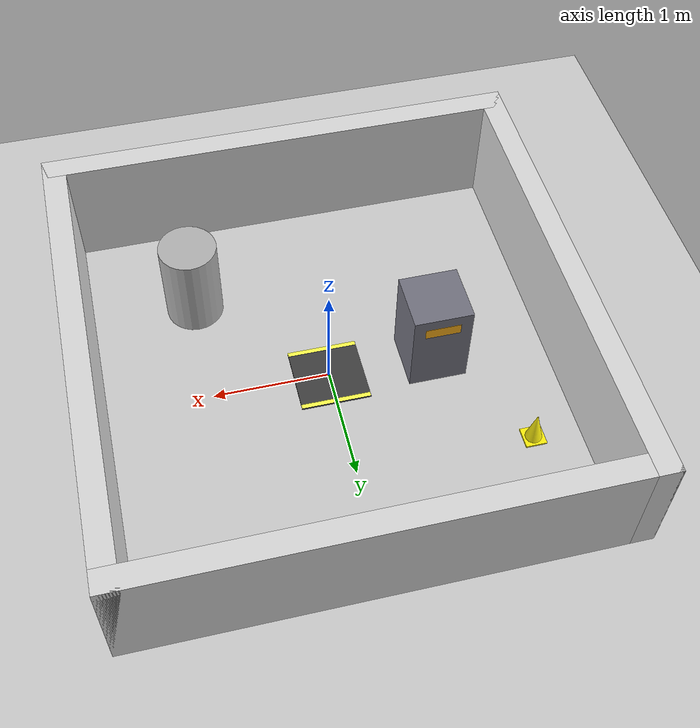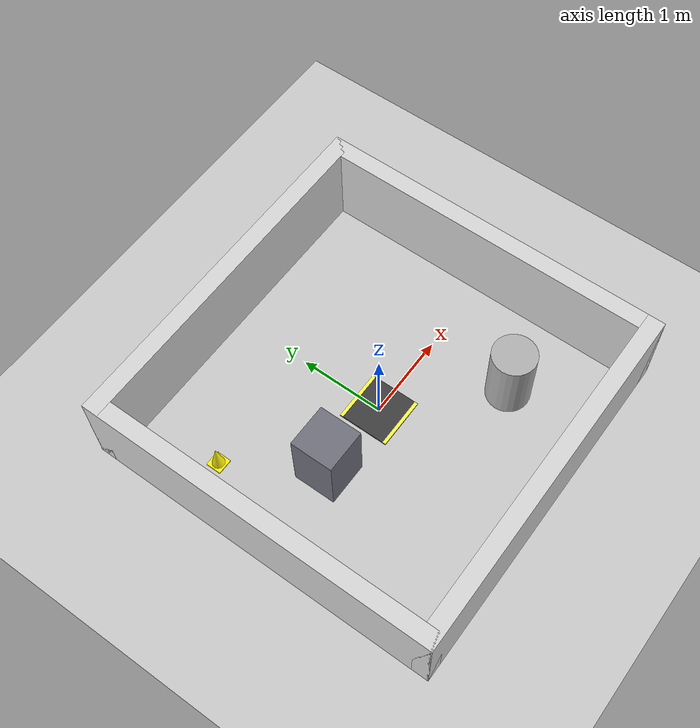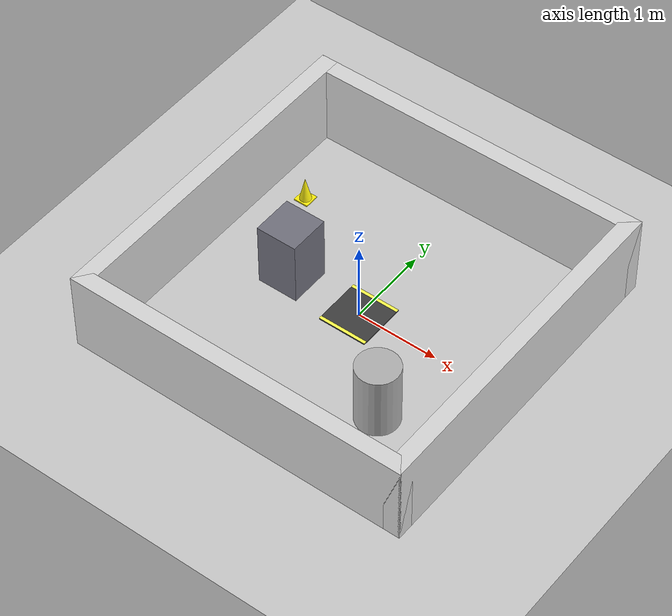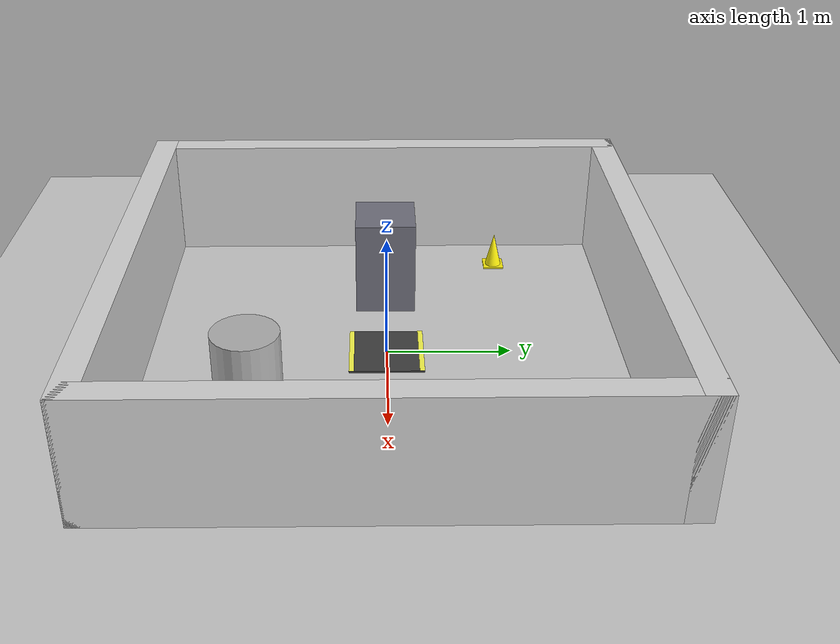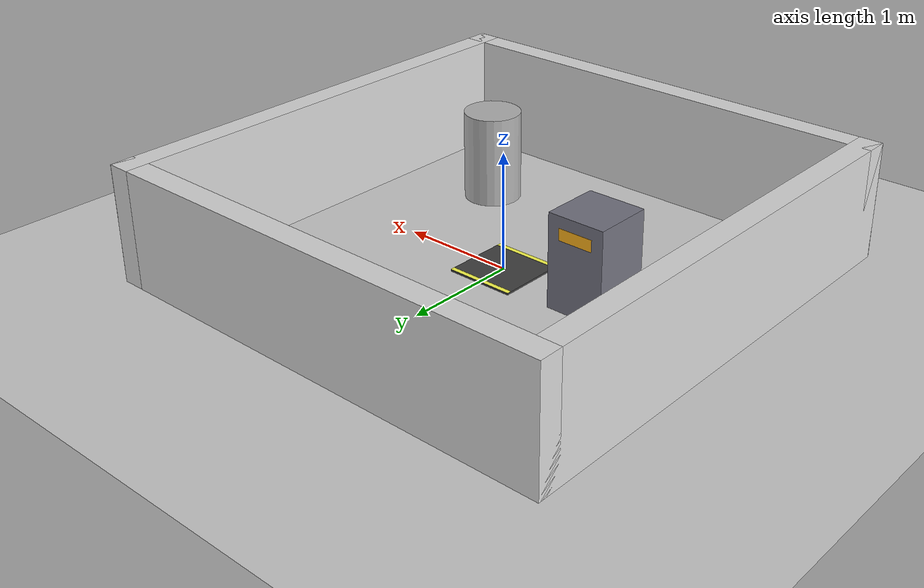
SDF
<sdf version="1.6">
 <world name="scout_arena">
  <physics type="ode">
   <real_time_update_rate>1000</real_time_update_rate>
   <max_step_size>0.001</max_step_size>
   <real_time_factor>1</real_time_factor>
  </physics>
  <scene><ambient>0.6 0.6 0.6 1</ambient><background>0.7 0.85 0.95 1</background><shadows>true</shadows></scene>
  <include><uri>model://sun</uri></include>
  <include><uri>model://ground_plane</uri></include>
  <model name="wall_north">
   <static>true</static>
   <pose>0 2.0 0.5 0 0 0</pose>
   <link name="link">
    <collision name="c"><geometry><box><size>4.2 0.2 1.0</size></box></geometry></collision>
    <visual name="v">
     <geometry><box><size>4.2 0.2 1.0</size></box></geometry>
     <material><ambient>0.75 0.75 0.75 1</ambient><diffuse>0.85 0.85 0.85 1</diffuse></material>
    </visual>
   </link>
  </model>
  <model name="wall_south">
   <static>true</static>
   <pose>0 -2.0 0.5 0 0 0</pose>
   <link name="link">
    <collision name="c"><geometry><box><size>4.2 0.2 1.0</size></box></geometry></collision>
    <visual name="v">
     <geometry><box><size>4.2 0.2 1.0</size></box></geometry>
     <material><ambient>0.75 0.75 0.75 1</ambient><diffuse>0.85 0.85 0.85 1</diffuse></material>
    </visual>
   </link>
  </model>
  <model name="wall_east">
   <static>true</static>
   <pose>2.0 0 0.5 0 0 0</pose>
   <link name="link">
    <collision name="c"><geometry><box><size>0.2 4.2 1.0</size></box></geometry></collision>
    <visual name="v">
     <geometry><box><size>0.2 4.2 1.0</size></box></geometry>
     <material><ambient>0.75 0.75 0.75 1</ambient><diffuse>0.85 0.85 0.85 1</diffuse></material>
    </visual>
   </link>
  </model>
  <model name="wall_west">
   <static>true</static>
   <pose>-2.0 0 0.5 0 0 0</pose>
   <link name="link">
    <collision name="c"><geometry><box><size>0.2 4.2 1.0</size></box></geometry></collision>
    <visual name="v">
     <geometry><box><size>0.2 4.2 1.0</size></box></geometry>
     <material><ambient>0.75 0.75 0.75 1</ambient><diffuse>0.85 0.85 0.85 1</diffuse></material>
    </visual>
   </link>
  </model>
  <include><uri>model://scout_dock</uri><name>scout_dock</name></include>
  <include>
   <uri>model://ur7_placeholder</uri>
   <name>ur7_placeholder</name>
   <pose>-0.9 0.0 0.4 0 0 0</pose>
  </include>
  <include>
   <uri>model://hazard_cone_yellow</uri>
   <name>hazard_yellow</name>
   <pose>-1.5 1.0 0.0 0 0 0</pose>
  </include>
  <model name="inner_pillar">
   <static>true</static>
   <pose>1.0 -1.0 0.4 0 0 0</pose>
   <link name="link">
    <collision name="c">
     <geometry><cylinder><radius>0.25</radius><length>0.8</length></cylinder></geometry>
    </collision>
    <visual name="v">
     <geometry><cylinder><radius>0.25</radius><length>0.8</length></cylinder></geometry>
     <material><ambient>0.6 0.6 0.6 1</ambient><diffuse>0.7 0.7 0.7 1</diffuse></material>
    </visual>
   </link>
  </model>
 </world>
</sdf>

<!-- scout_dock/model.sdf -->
<sdf version="1.6">
  <!-- Thin ground pad (2 cm tall, 0.6 x 0.6 m) placed wherever the
       arm's pickup station will live. Non-colliding so the robot can
       roll onto it. -->
  <model name="scout_dock">
    <static>true</static>
    <link name="link">
      <visual name="pad">
        <geometry>
          <box><size>0.6 0.6 0.02</size></box>
        </geometry>
        <material>
          <ambient>0.15 0.15 0.15 1</ambient>
          <diffuse>0.25 0.25 0.25 1</diffuse>
        </material>
      </visual>
      <visual name="stripe_n">
        <pose>0 0.28 0.011 0 0 0</pose>
        <geometry>
          <box><size>0.6 0.04 0.001</size></box>
        </geometry>
        <material>
          <ambient>0.95 0.95 0.2 1</ambient>
          <diffuse>1.0 1.0 0.3 1</diffuse>
        </material>
      </visual>
      <visual name="stripe_s">
        <pose>0 -0.28 0.011 0 0 0</pose>
        <geometry>
          <box><size>0.6 0.04 0.001</size></box>
        </geometry>
        <material>
          <ambient>0.95 0.95 0.2 1</ambient>
          <diffuse>1.0 1.0 0.3 1</diffuse>
        </material>
      </visual>
    </link>
  </model>
</sdf>

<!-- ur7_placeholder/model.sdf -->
<sdf version="1.6">
  <!-- Not functional. Just a 50 x 50 x 80 cm box painted industrial grey
       so the arm's eventual footprint is obvious in the scene. -->
  <model name="ur7_placeholder">
    <static>true</static>
    <link name="base">
      <collision name="base_col">
        <geometry>
          <box><size>0.5 0.5 0.8</size></box>
        </geometry>
      </collision>
      <visual name="base_vis">
        <geometry>
          <box><size>0.5 0.5 0.8</size></box>
        </geometry>
        <material>
          <ambient>0.3 0.3 0.35 1</ambient>
          <diffuse>0.45 0.45 0.5 1</diffuse>
          <specular>0.2 0.2 0.2 1</specular>
        </material>
      </visual>
      <visual name="label">
        <pose>0 0.251 0.25 0 0 0</pose>
        <geometry>
          <box><size>0.3 0.001 0.1</size></box>
        </geometry>
        <material>
          <ambient>0.95 0.6 0.05 1</ambient>
          <diffuse>1.0 0.7 0.1 1</diffuse>
          <emissive>0.2 0.1 0.0 1</emissive>
        </material>
      </visual>
    </link>
  </model>
</sdf>

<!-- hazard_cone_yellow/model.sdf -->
<sdf version="1.6">
  <!--
    FSAE / lab-style traffic cone, ~12 inches (305 mm) tall.
    See hazard_cone_red/model.sdf for shape commentary.
    Origin: bottom-center of the skirt (sits flush on z=0).
  -->
  <model name="hazard_cone_yellow">
    <static>true</static>
    <link name="link">
      <collision name="skirt_col">
        <pose>0 0 0.0075 0 0 0</pose>
        <geometry><box><size>0.18 0.18 0.015</size></box></geometry>
      </collision>
      <visual name="skirt_vis">
        <pose>0 0 0.0075 0 0 0</pose>
        <geometry><box><size>0.18 0.18 0.015</size></box></geometry>
        <material>
          <ambient>0.95 0.85 0.05 1</ambient>
          <diffuse>1.0 0.95 0.05 1</diffuse>
          <specular>0.1 0.1 0.1 1</specular>
          <emissive>0.15 0.12 0.0 1</emissive>
        </material>
      </visual>

      <visual name="body_vis">
        <pose>0 0 0.015 0 0 0</pose>
        <geometry>
          <mesh>
            <uri>model://hazard_cone_yellow/cone.obj</uri>
            <scale>0.07 0.07 0.290</scale>
          </mesh>
        </geometry>
        <material>
          <ambient>0.95 0.85 0.05 1</ambient>
          <diffuse>1.0 0.95 0.05 1</diffuse>
          <specular>0.1 0.1 0.1 1</specular>
          <emissive>0.15 0.12 0.0 1</emissive>
        </material>
      </visual>

      <collision name="body_col">
        <pose>0 0 0.16 0 0 0</pose>
        <geometry><cylinder><radius>0.04</radius><length>0.290</length></cylinder></geometry>
      </collision>
    </link>
  </model>
</sdf>
